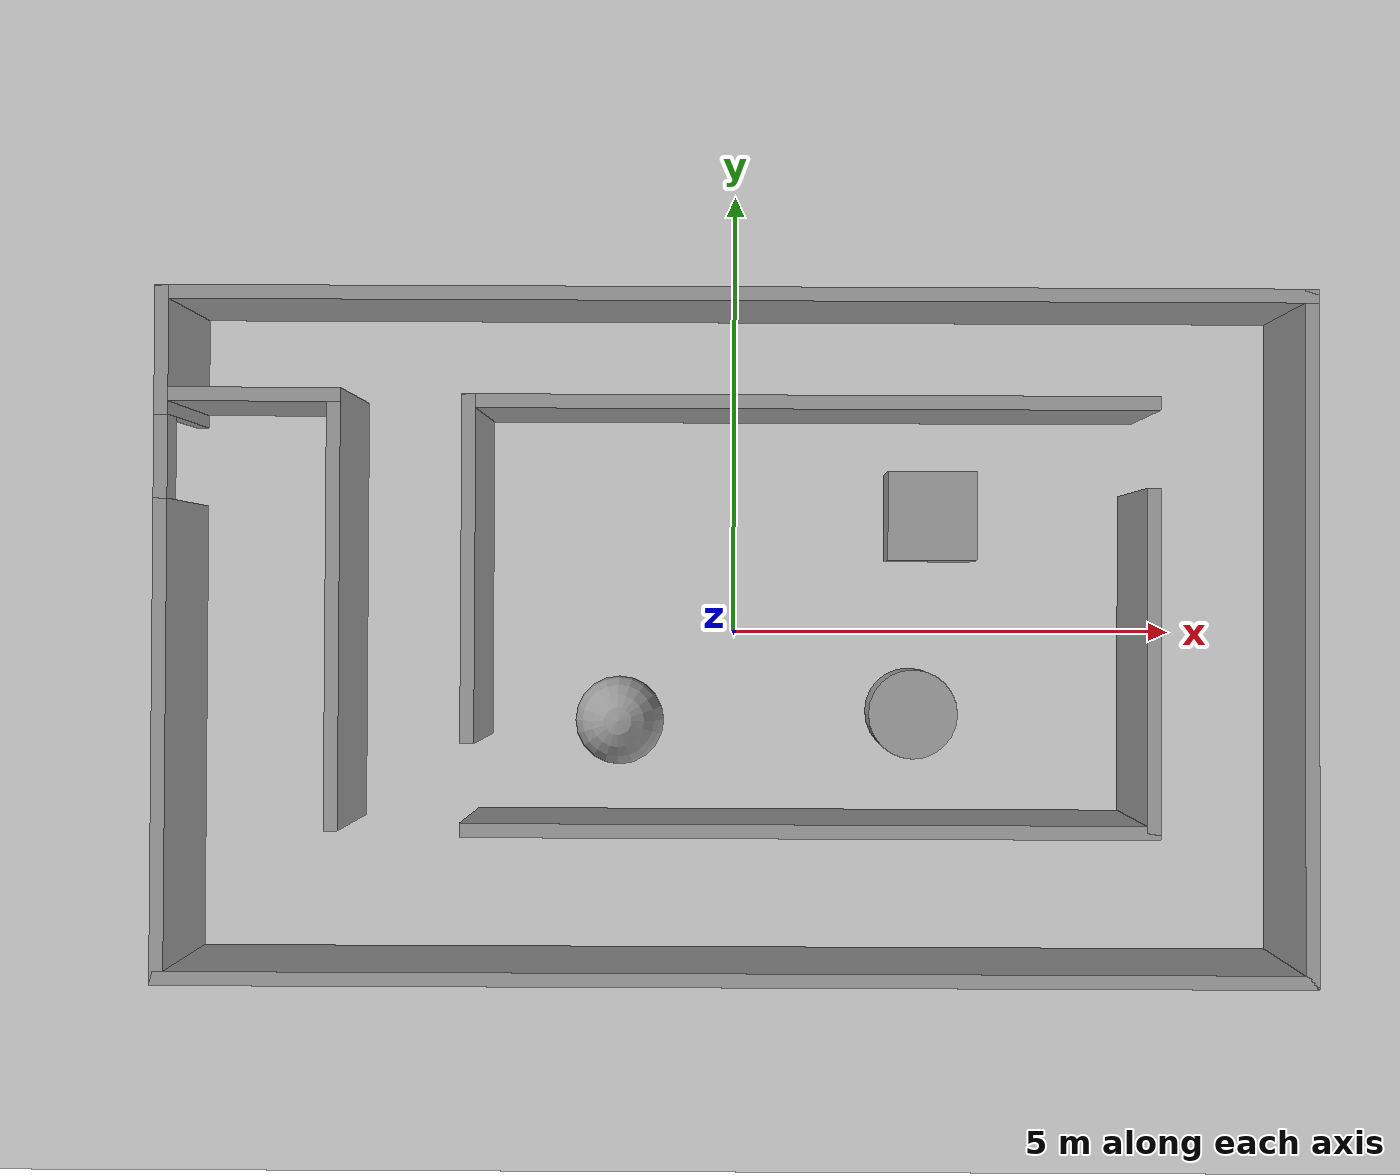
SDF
<sdf version="1.7">
 <world name="default">
  <light name="sun" type="directional">
   <pose>0 0 10 0 -0 0</pose>
   <diffuse>0.8 0.8 0.8 1</diffuse>
   <specular>0.2 0.2 0.2 1</specular>
   <attenuation>
    <range>1000</range>
    <constant>0.9</constant>
    <linear>0.01</linear>
    <quadratic>0.001</quadratic>
   </attenuation>
   <direction>-0.5 0.1 -0.9</direction>
   <spot><inner_angle>0</inner_angle><outer_angle>0</outer_angle><falloff>0</falloff></spot>
  </light>
  <model name="ground_plane">
   <static>1</static>
   <link name="link">
    <collision name="collision">
     <geometry><plane><normal>0 0 1</normal><size>100 100</size></plane></geometry>
     <surface>
      <contact><collide_bitmask>65535</collide_bitmask></contact>
      <friction><ode><mu>100</mu><mu2>50</mu2></ode></friction>
     </surface>
    </collision>
    <visual name="visual">
     <cast_shadows>0</cast_shadows>
     <geometry><plane><normal>0 0 1</normal><size>100 100</size></plane></geometry>
     <material>
      <script><uri>file://media/materials/scripts/gazebo.material</uri><name>Gazebo/Grey</name></script>
     </material>
    </visual>
   </link>
  </model>
  <gravity>0 0 -9.8</gravity>
  <magnetic_field>6e-06 2.3e-05 -4.2e-05</magnetic_field>
  <atmosphere type="adiabatic"/>
  <physics type="dartsim">
   <max_step_size>0.001</max_step_size>
   <real_time_factor>1</real_time_factor>
   <real_time_update_rate>1000</real_time_update_rate>
  </physics>
  <scene><ambient>0.4 0.4 0.4 1</ambient><background>0.7 0.7 0.7 1</background><shadows>1</shadows></scene>
  <audio><device>default</device></audio>
  <spherical_coordinates>
   <surface_model>EARTH_WGS84</surface_model>
   <latitude_deg>0</latitude_deg>
   <longitude_deg>0</longitude_deg>
   <elevation>0</elevation>
   <heading_deg>0</heading_deg>
  </spherical_coordinates>
  <model name="neobot.warld">
   <pose>0.016142 -0.039333 0 0 -0 0</pose>
   <link name="Wall_19">
    <collision name="Wall_19_Collision">
     <geometry><box><size>3.75 0.15 2.5</size></box></geometry>
     <pose>0 0 1.25 0 -0 0</pose>
    </collision>
    <visual name="Wall_19_Visual">
     <pose>0 0 1.25 0 -0 0</pose>
     <geometry><box><size>3.75 0.15 2.5</size></box></geometry>
     <material>
      <script><uri>file://media/materials/scripts/gazebo.material</uri><name>Gazebo/Grey</name></script>
      <ambient>1 1 1 1</ambient>
     </material>
     <meta><layer>0</layer></meta>
    </visual>
    <pose>4.47791 -0.27174 0 0 -0 1.5708</pose>
   </link>
   <link name="Wall_2">
    <collision name="Wall_2_Collision">
     <geometry><box><size>12.5 0.15 2.5</size></box></geometry>
     <pose>0 0 1.25 0 -0 0</pose>
    </collision>
    <visual name="Wall_2_Visual">
     <pose>0 0 1.25 0 -0 0</pose>
     <geometry><box><size>12.5 0.15 2.5</size></box></geometry>
     <material>
      <script><uri>file://media/materials/scripts/gazebo.material</uri><name>Gazebo/Grey</name></script>
      <ambient>1 1 1 1</ambient>
     </material>
     <meta><layer>0</layer></meta>
    </visual>
    <pose>-0 -3.675 0 0 -0 0</pose>
   </link>
   <link name="Wall_23">
    <collision name="Wall_23_Collision">
     <geometry><box><size>7.5 0.15 2.5</size></box></geometry>
     <pose>0 0 1.25 0 -0 0</pose>
    </collision>
    <visual name="Wall_23_Visual">
     <pose>0 0 1.25 0 -0 0</pose>
     <geometry><box><size>7.5 0.15 2.5</size></box></geometry>
     <material>
      <script><uri>file://media/materials/scripts/gazebo.material</uri><name>Gazebo/Grey</name></script>
      <ambient>1 1 1 1</ambient>
     </material>
     <meta><layer>0</layer></meta>
    </visual>
    <pose>0.802429 2.51389 0 0 -0 0</pose>
   </link>
   <link name="Wall_25">
    <pose>-6.175 0 0 0 -0 -1.5708</pose>
    <visual name="Wall_25_Visual_0">
     <pose>-3.05277 0 1.25 0 -0 0</pose>
     <geometry><box><size>1.39447 0.15 2.5</size></box></geometry>
     <material>
      <script><uri>file://media/materials/scripts/gazebo.material</uri><name>Gazebo/Grey</name></script>
      <ambient>1 1 1 1</ambient>
     </material>
     <meta><layer>0</layer></meta>
    </visual>
    <collision name="Wall_25_Collision_0">
     <geometry><box><size>1.39447 0.15 2.5</size></box></geometry>
     <pose>-3.05277 0 1.25 0 -0 0</pose>
    </collision>
    <visual name="Wall_25_Visual_1">
     <pose>1.14723 0 1.25 0 -0 0</pose>
     <geometry><box><size>5.20554 0.15 2.5</size></box></geometry>
     <material>
      <script><uri>file://media/materials/scripts/gazebo.material</uri><name>Gazebo/Grey</name></script>
      <ambient>1 1 1 1</ambient>
     </material>
     <meta><layer>0</layer></meta>
    </visual>
    <collision name="Wall_25_Collision_1">
     <geometry><box><size>5.20554 0.15 2.5</size></box></geometry>
     <pose>1.14723 0 1.25 0 -0 0</pose>
    </collision>
    <visual name="Wall_25_Visual_2">
     <pose>-1.90553 0 2.25 0 -0 0</pose>
     <geometry><box><size>0.9 0.15 0.5</size></box></geometry>
     <material>
      <script><uri>file://media/materials/scripts/gazebo.material</uri><name>Gazebo/Grey</name></script>
      <ambient>1 1 1 1</ambient>
     </material>
     <meta><layer>0</layer></meta>
    </visual>
    <collision name="Wall_25_Collision_2">
     <geometry><box><size>0.9 0.15 0.5</size></box></geometry>
     <pose>-1.90553 0 2.25 0 -0 0</pose>
    </collision>
   </link>
   <link name="Wall_3">
    <collision name="Wall_3_Collision">
     <geometry><box><size>7.5 0.15 2.5</size></box></geometry>
     <pose>0 0 1.25 0 -0 0</pose>
    </collision>
    <visual name="Wall_3_Visual">
     <pose>0 0 1.25 0 -0 0</pose>
     <geometry><box><size>7.5 0.15 2.5</size></box></geometry>
     <material>
      <script><uri>file://media/materials/scripts/gazebo.material</uri><name>Gazebo/Grey</name></script>
      <ambient>1 1 1 1</ambient>
     </material>
     <meta><layer>0</layer></meta>
    </visual>
    <pose>6.175 0 0 0 -0 1.5708</pose>
   </link>
   <link name="Wall_30">
    <collision name="Wall_30_Collision">
     <geometry><box><size>7.5 0.15 2.5</size></box></geometry>
     <pose>0 0 1.25 0 -0 0</pose>
    </collision>
    <visual name="Wall_30_Visual">
     <pose>0 0 1.25 0 -0 0</pose>
     <geometry><box><size>7.5 0.15 2.5</size></box></geometry>
     <material>
      <script><uri>file://media/materials/scripts/gazebo.material</uri><name>Gazebo/Grey</name></script>
      <ambient>1 1 1 1</ambient>
     </material>
     <meta><layer>0</layer></meta>
    </visual>
    <pose>0.802429 -2.08611 0 0 -0 0</pose>
   </link>
   <link name="Wall_32">
    <collision name="Wall_32_Collision">
     <geometry><box><size>3.75 0.15 2.5</size></box></geometry>
     <pose>0 0 1.25 0 -0 0</pose>
    </collision>
    <visual name="Wall_32_Visual">
     <pose>0 0 1.25 0 -0 0</pose>
     <geometry><box><size>3.75 0.15 2.5</size></box></geometry>
     <material>
      <script><uri>file://media/materials/scripts/gazebo.material</uri><name>Gazebo/Grey</name></script>
      <ambient>1 1 1 1</ambient>
     </material>
     <meta><layer>0</layer></meta>
    </visual>
    <pose>-2.87257 0.713885 0 0 -0 -1.5708</pose>
   </link>
   <link name="Wall_4">
    <collision name="Wall_4_Collision">
     <geometry><box><size>12.5 0.15 2.5</size></box></geometry>
     <pose>0 0 1.25 0 -0 0</pose>
    </collision>
    <visual name="Wall_4_Visual">
     <pose>0 0 1.25 0 -0 0</pose>
     <geometry><box><size>12.5 0.15 2.5</size></box></geometry>
     <material>
      <script><uri>file://media/materials/scripts/gazebo.material</uri><name>Gazebo/Grey</name></script>
      <ambient>1 1 1 1</ambient>
     </material>
     <meta><layer>0</layer></meta>
    </visual>
    <pose>-0 3.675 0 0 -0 3.14159</pose>
   </link>
   <link name="Wall_8">
    <collision name="Wall_8_Collision">
     <geometry><box><size>2 0.15 2.5</size></box></geometry>
     <pose>0 0 1.25 0 -0 0</pose>
    </collision>
    <visual name="Wall_8_Visual">
     <pose>0 0 1.25 0 -0 0</pose>
     <geometry><box><size>2 0.15 2.5</size></box></geometry>
     <material>
      <script><uri>file://media/materials/scripts/gazebo.material</uri><name>Gazebo/Grey</name></script>
      <ambient>1 1 1 1</ambient>
     </material>
     <meta><layer>0</layer></meta>
    </visual>
    <pose>-5.25 2.575 0 0 -0 0</pose>
   </link>
   <link name="Wall_9">
    <collision name="Wall_9_Collision">
     <geometry><box><size>4.75 0.15 2.5</size></box></geometry>
     <pose>0 0 1.25 0 -0 0</pose>
    </collision>
    <visual name="Wall_9_Visual">
     <pose>0 0 1.25 0 -0 0</pose>
     <geometry><box><size>4.75 0.15 2.5</size></box></geometry>
     <material>
      <script><uri>file://media/materials/scripts/gazebo.material</uri><name>Gazebo/Grey</name></script>
      <ambient>1 1 1 1</ambient>
     </material>
     <meta><layer>0</layer></meta>
    </visual>
    <pose>-4.325 0.275 0 0 -0 -1.5708</pose>
   </link>
   <static>1</static>
  </model>
  <model name="unit_box">
   <pose>2.21888 1.30307 0.499995 1e-05 -0 0</pose>
   <link name="link">
    <inertial>
     <mass>1</mass>
     <inertia>
      <ixx>0.166667</ixx>
      <ixy>0</ixy>
      <ixz>0</ixz>
      <iyy>0.166667</iyy>
      <iyz>0</iyz>
      <izz>0.166667</izz>
     </inertia>
    </inertial>
    <collision name="collision"><geometry><box><size>1 1 1</size></box></geometry></collision>
    <visual name="visual">
     <geometry><box><size>1 1 1</size></box></geometry>
     <material>
      <script><name>Gazebo/Grey</name><uri>file://media/materials/scripts/gazebo.material</uri></script>
     </material>
    </visual>
   </link>
  </model>
  <model name="unit_sphere">
   <pose>-1.29815 -1.01599 0.5 0 -0 0</pose>
   <link name="link">
    <inertial>
     <mass>1</mass>
     <inertia><ixx>0.1</ixx><ixy>0</ixy><ixz>0</ixz><iyy>0.1</iyy><iyz>0</iyz><izz>0.1</izz></inertia>
    </inertial>
    <collision name="collision"><geometry><sphere><radius>0.5</radius></sphere></geometry></collision>
    <visual name="visual">
     <geometry><sphere><radius>0.5</radius></sphere></geometry>
     <material>
      <script><name>Gazebo/Grey</name><uri>file://media/materials/scripts/gazebo.material</uri></script>
     </material>
    </visual>
   </link>
  </model>
  <model name="unit_cylinder">
   <pose>2.00596 -0.922883 0.499997 3e-06 4e-06 -0</pose>
   <link name="link">
    <inertial>
     <mass>1</mass>
     <inertia><ixx>0.145833</ixx><ixy>0</ixy><ixz>0</ixz><iyy>0.145833</iyy><iyz>0</iyz><izz>0.125</izz></inertia>
    </inertial>
    <collision name="collision">
     <geometry><cylinder><radius>0.5</radius><length>1</length></cylinder></geometry>
    </collision>
    <visual name="visual">
     <geometry><cylinder><radius>0.5</radius><length>1</length></cylinder></geometry>
     <material>
      <script><name>Gazebo/Grey</name><uri>file://media/materials/scripts/gazebo.material</uri></script>
     </material>
    </visual>
   </link>
  </model>
 </world>
</sdf>
